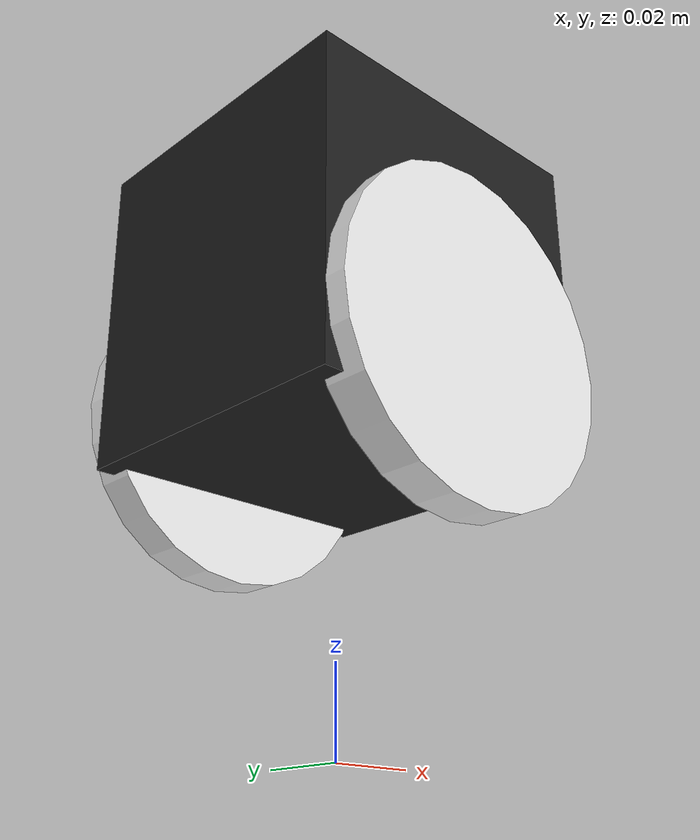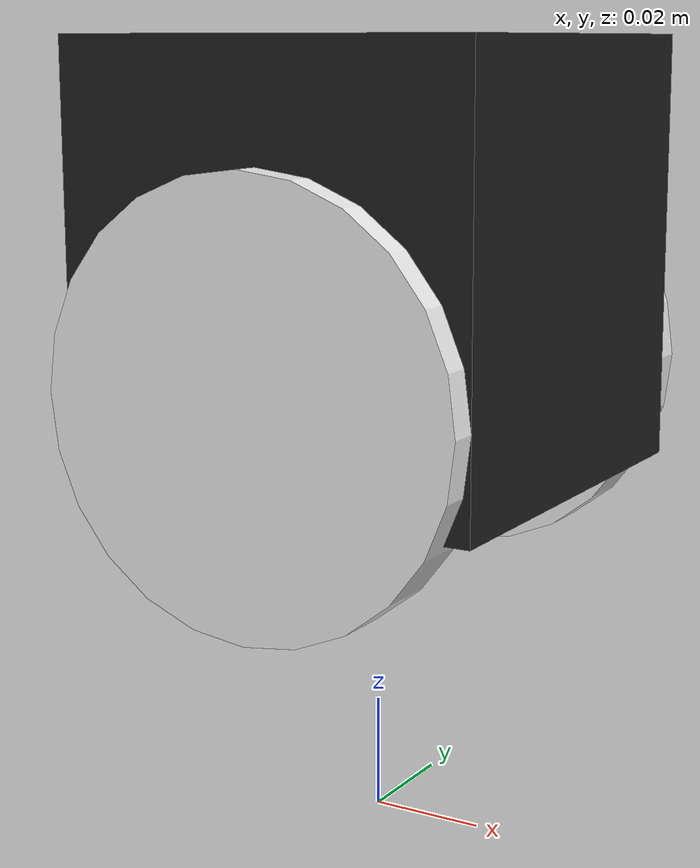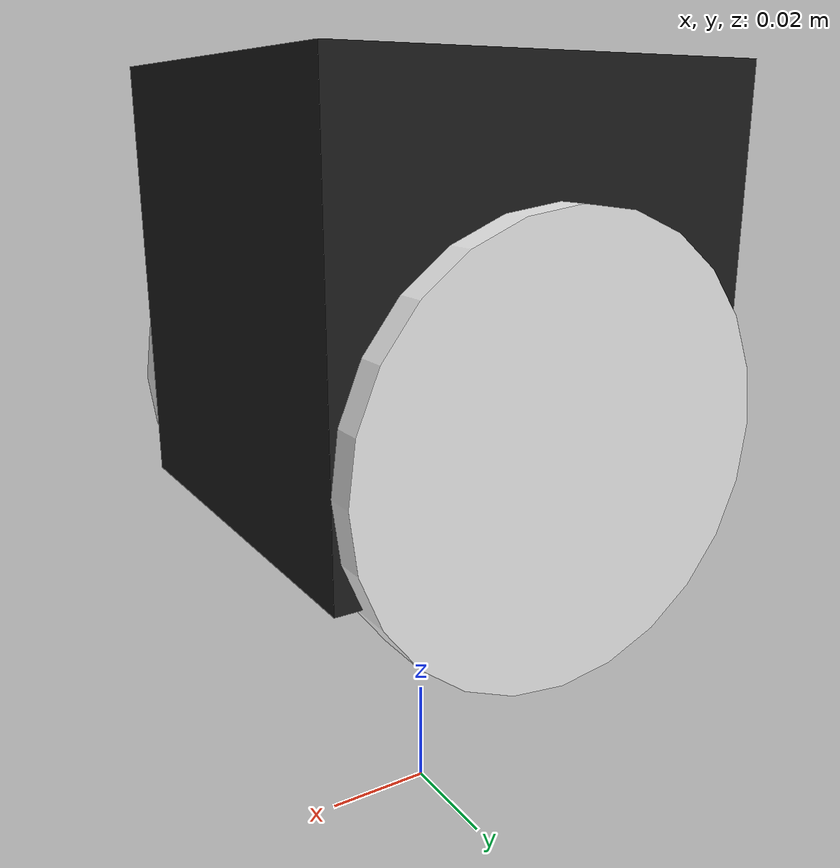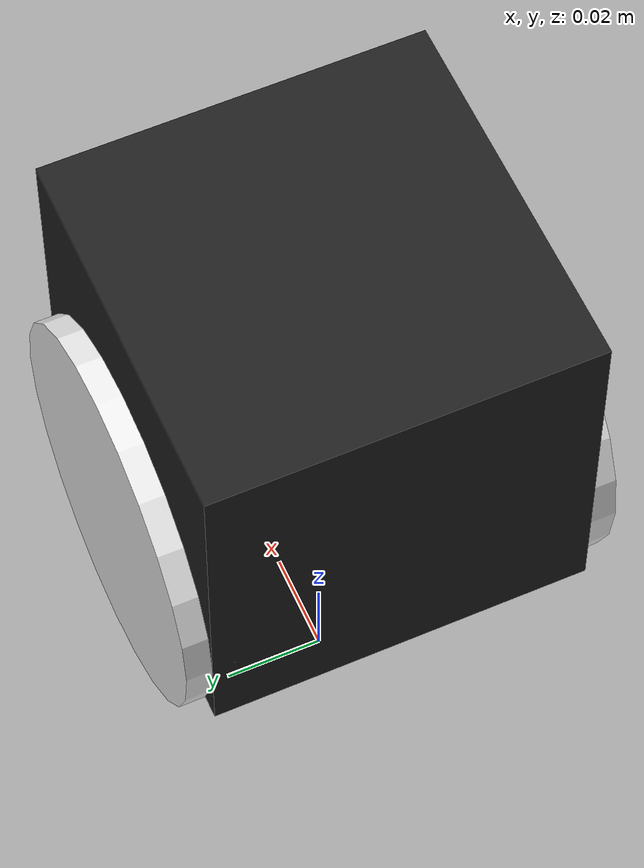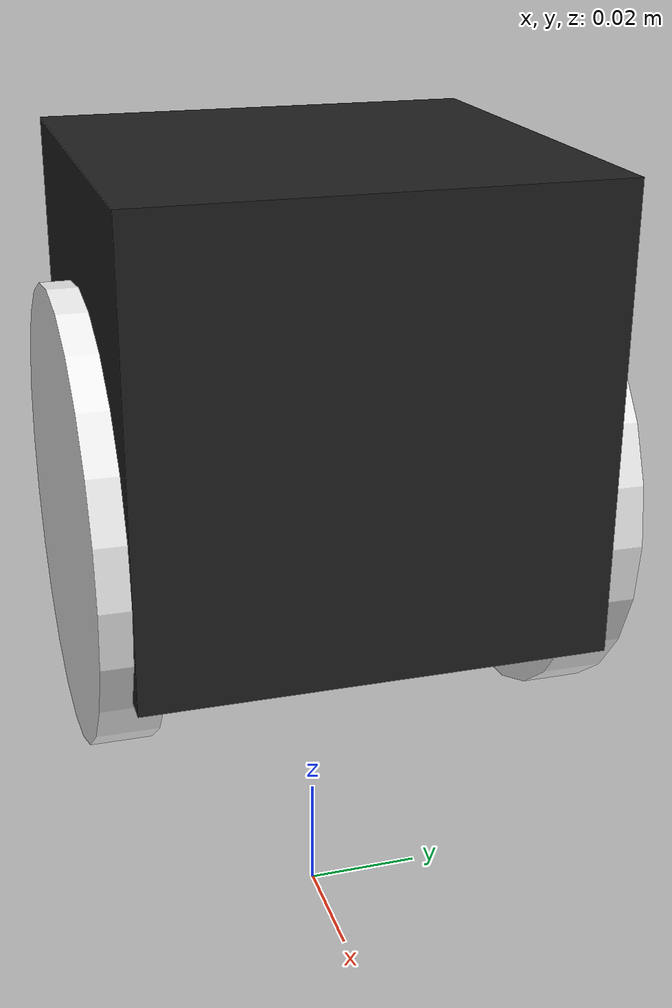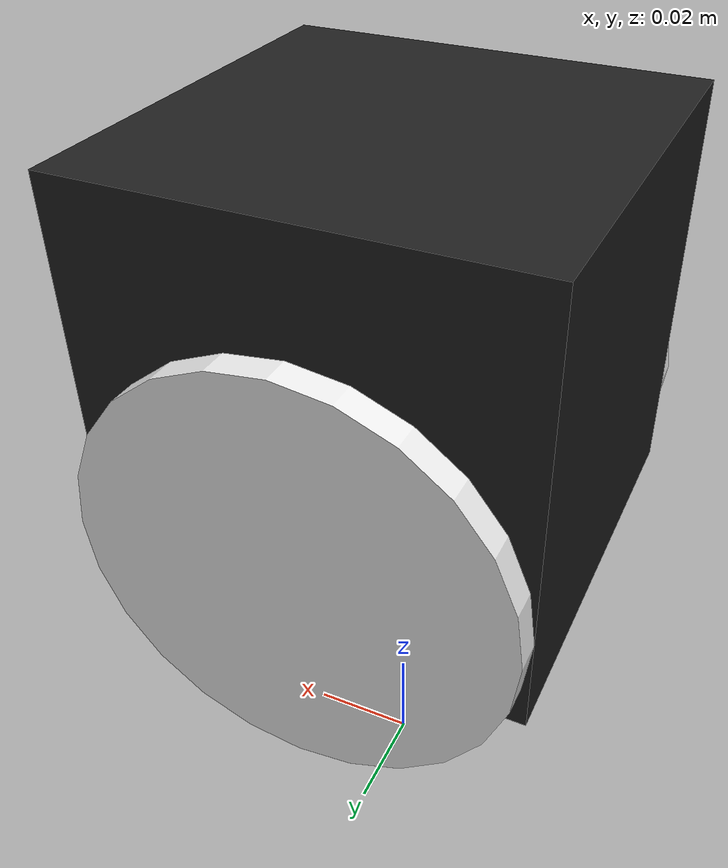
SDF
<?xml version='1.0'?>
<sdf version='1.4'>
  <model name="unball_robot">
    <static>false</static>

    <link name='unball_robot_chassis'>
      <gravity>true</gravity>
      <self_collide>true</self_collide>
      <kinematic>false</kinematic>
      <velocity_decay>
        <linear>0.1</linear>
        <angular>0.1</angular>
      </velocity_decay>
      <inertial>
        <mass>0.200</mass>
        <pose>0 0 -0.05 0 0 0</pose>
        <inertia>
          <ixx>1</ixx>
          <ixy>0</ixy>
          <ixz>0</ixz>
          <iyy>1</iyy>
          <iyz>0</iyz>
          <izz>1</izz>
        </inertia>
      </inertial>
      <pose>0 0 .1 0 0 0</pose>
      <collision name='collision'>
        <geometry>
          <box>
            <size>.075 .075 .075</size>
          </box>
        </geometry>
      </collision>
      <visual name='visual'>
        <geometry>
          <box>
            <size>.075 .075 .075</size>
          </box>
        </geometry>
        <material>
          <script>
            <uri>file://media/materials/scripts/gazebo.material</uri>
            <name>Gazebo/Black</name>
          </script>
        </material>
      </visual>
    </link>

    <link name="left_wheel">
      <velocity_decay>
        <linear>0.1</linear>
        <angular>0.1</angular>
      </velocity_decay>
      <inertial>
        <mass>0.100</mass>
        <inertia>
          <ixx>1</ixx>
          <ixy>0</ixy>
          <ixz>0</ixz>
          <iyy>1</iyy>
          <iyz>0</iyz>
          <izz>1</izz>
        </inertia>
      </inertial>
      <pose>0 0.0375 0.08 0 1.5707 1.5707</pose>
      <collision name="collision">
        <geometry>
          <cylinder>
            <radius>.0375</radius>
            <length>.01</length>
          </cylinder>
        </geometry>
      </collision>
      <visual name="visual">
        <geometry>
          <cylinder>
            <radius>.0375</radius>
            <length>.01</length>
          </cylinder>
        </geometry>
        <material>
          <script>
            <uri>file://media/materials/scripts/gazebo.material</uri>
            <name>Gazebo/White</name>
          </script>
        </material>
      </visual>
    </link>

    <link name="right_wheel">
      <velocity_decay>
        <linear>0.1</linear>
        <angular>0.1</angular>
      </velocity_decay>
      <inertial>
        <mass>0.100</mass>
        <inertia>
          <ixx>1</ixx>
          <ixy>0</ixy>
          <ixz>0</ixz>
          <iyy>1</iyy>
          <iyz>0</iyz>
          <izz>1</izz>
        </inertia>
      </inertial>
      <pose>0 -0.0375 0.08 0 1.5707 1.5707</pose>
      <collision name="collision">
        <geometry>
          <cylinder>
            <radius>.0375</radius>
            <length>.01</length>
          </cylinder>
        </geometry>
      </collision>
      <visual name="visual">
        <geometry>
          <cylinder>
            <radius>.0375</radius>
            <length>.01</length>
          </cylinder>
        </geometry>
        <material>
          <script>
            <uri>file://media/materials/scripts/gazebo.material</uri>
            <name>Gazebo/White</name>
          </script>
        </material>
      </visual>
    </link>

    <joint type="revolute" name="unball_robot_left_wheel_joint">
      <pose>0 0 0 0 0 0</pose>
      <child>left_wheel</child>
      <parent>unball_robot_chassis</parent>
      <axis>
        <xyz>0.0 1.0 0.0</xyz>
        <limit>
          <lower>-100</lower>
          <upper>100</upper>
          <effort>1000</effort>
          <velocity>1000</velocity>
        </limit>
        <dynamics>
          <damping>1.0</damping>
          <friction>0.0</friction>
        </dynamics>
      </axis>
      <physics>
        <ode>
          <cfm>0.2</cfm>
          <bounce>0.0</bounce>
          <max_force>1000.0</max_force>
          <velocity>0.0</velocity>
          <fudge_factor>0.0</fudge_factor>
          <limit>
            <cfm>0</cfm>
            <erp>0.1</erp>
          </limit>
          <suspension>
            <cfm>0</cfm>
            <erp>0.2</erp>
          </suspension>
        </ode>
      </physics>
    </joint>

    <joint type="revolute" name="unball_robot_right_wheel_joint">
      <pose>0 0 0 0 0 0</pose>
      <child>right_wheel</child>
      <parent>unball_robot_chassis</parent>
      <axis>
        <xyz>0.0 1.0 0.0</xyz>
        <limit>
          <lower>-100</lower>
          <upper>100</upper>
          <effort>1000</effort>
          <velocity>1000</velocity>
        </limit>
        <dynamics>
          <damping>1.0</damping>
          <friction>0.0</friction>
        </dynamics>
      </axis>
      <physics>
        <ode>
          <cfm>0.2</cfm>
          <bounce>0.0</bounce>
          <max_force>1000.0</max_force>
          <velocity>0.0</velocity>
          <fudge_factor>0.0</fudge_factor>
          <limit>
            <cfm>0</cfm>
            <erp>0.1</erp>
          </limit>
          <suspension>
            <cfm>0</cfm>
            <erp>0.2</erp>
          </suspension>
        </ode>
      </physics>
    </joint>

    <plugin name="differential_drive_controller" filename="libgazebo_ros_diff_drive.so">
      <alwaysOn>true</alwaysOn>
      <updateRate>1000</updateRate>
      <leftJoint>unball_robot_left_wheel_joint</leftJoint>
      <rightJoint>unball_robot_right_wheel_joint</rightJoint>
      <wheelSeparation>0.075</wheelSeparation>
      <wheelDiameter>0.08</wheelDiameter>
      <torque>100</torque>
      <commandTopic>cmd_vel</commandTopic>
      <odometryTopic>odom</odometryTopic>
      <odometryFrame>odom</odometryFrame>
      <robotBaseFrame>unball_robot_chassis</robotBaseFrame>
    </plugin>
  </model>
</sdf>
